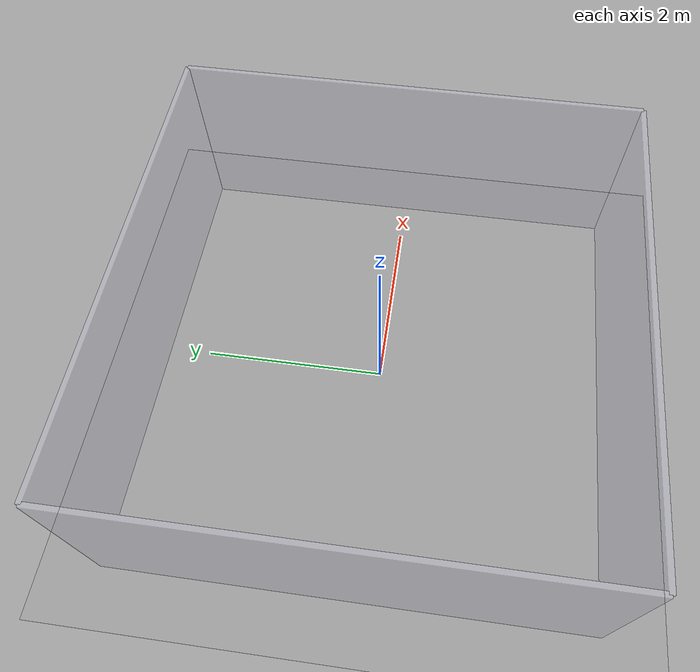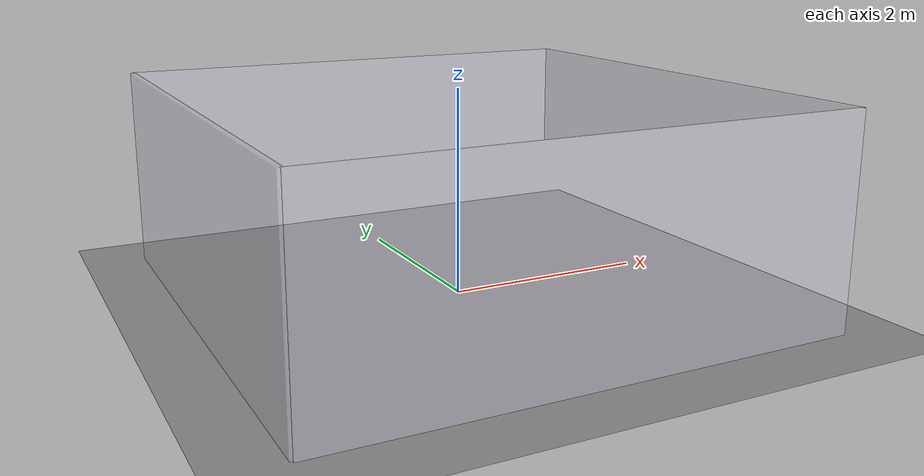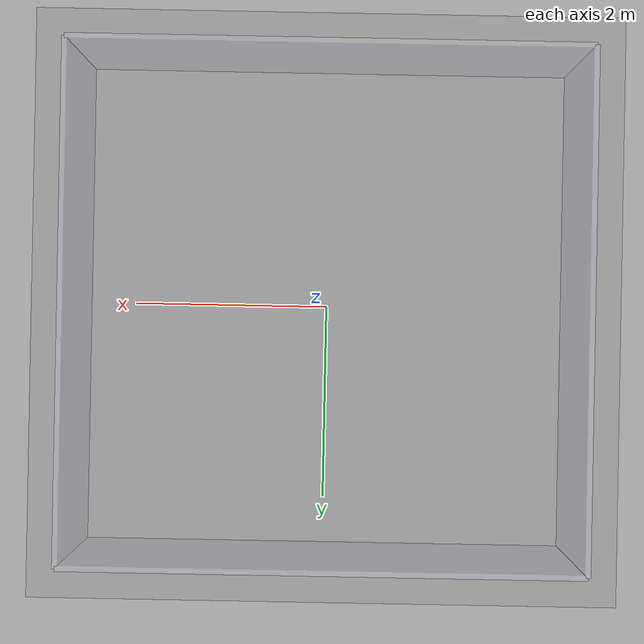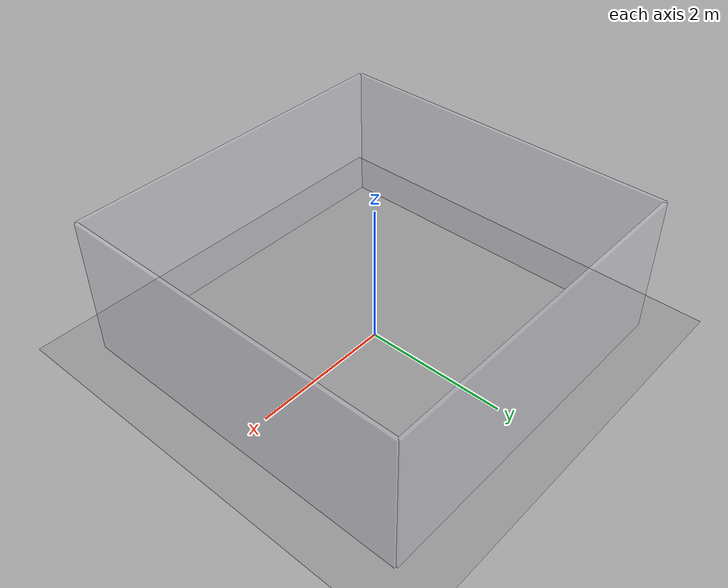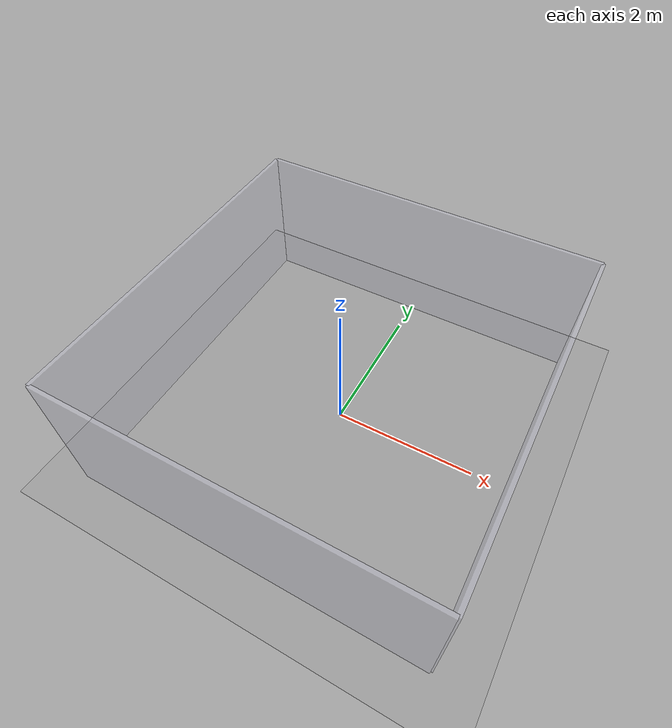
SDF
<sdf version="1.6">
 <world name="crazyflie_trajectory_arena">
  <physics name="arena_physics" type="ode">
   <max_step_size>0.001</max_step_size>
   <real_time_factor>1.0</real_time_factor>
   <real_time_update_rate>1000</real_time_update_rate>
   <ode>
    <solver><type>quick</type><iters>100</iters><sor>1.3</sor></solver>
    <constraints>
     <cfm>0</cfm>
     <erp>0.2</erp>
     <contact_max_correcting_vel>100</contact_max_correcting_vel>
     <contact_surface_layer>0.001</contact_surface_layer>
    </constraints>
   </ode>
  </physics>
  <light name="arena_sunlight" type="directional">
   <pose>0 0 10 0 0 0</pose>
   <diffuse>0.8 0.8 0.8 1</diffuse>
   <specular>0.1 0.1 0.1 1</specular>
   <direction>-0.5 0.1 -0.9</direction>
  </light>
  <light name="arena_ambient" type="directional">
   <cast_shadows>false</cast_shadows>
   <pose>0 0 5 0 0 0</pose>
   <diffuse>0.4 0.4 0.4 1</diffuse>
   <specular>0 0 0 1</specular>
   <direction>0 0 -1</direction>
  </light>
  <model name="arena_ground_plane">
   <static>true</static>
   <link name="ground_link">
    <collision name="ground_collision">
     <geometry><plane><normal>0 0 1</normal><size>10 10</size></plane></geometry>
     <surface><friction><ode><mu>1.0</mu><mu2>1.0</mu2></ode></friction></surface>
    </collision>
    <visual name="ground_visual">
     <geometry><plane><normal>0 0 1</normal><size>10 10</size></plane></geometry>
     <material><ambient>0.6 0.6 0.6 1</ambient><diffuse>0.6 0.6 0.6 1</diffuse></material>
    </visual>
   </link>
  </model>
  <model name="arena_wall_north">
   <static>true</static>
   <pose>0 2.5 1.0 0 0 0</pose>
   <link name="wall_link">
    <collision name="wall_col"><geometry><box><size>5 0.05 2</size></box></geometry></collision>
    <visual name="wall_vis">
     <geometry><box><size>5 0.05 2</size></box></geometry>
     <material><ambient>0.8 0.8 0.9 0.3</ambient><diffuse>0.8 0.8 0.9 0.3</diffuse></material>
    </visual>
   </link>
  </model>
  <model name="arena_wall_south">
   <static>true</static>
   <pose>0 -2.5 1.0 0 0 0</pose>
   <link name="wall_link">
    <collision name="wall_col"><geometry><box><size>5 0.05 2</size></box></geometry></collision>
    <visual name="wall_vis">
     <geometry><box><size>5 0.05 2</size></box></geometry>
     <material><ambient>0.8 0.8 0.9 0.3</ambient><diffuse>0.8 0.8 0.9 0.3</diffuse></material>
    </visual>
   </link>
  </model>
  <model name="arena_wall_east">
   <static>true</static>
   <pose>2.5 0 1.0 0 0 0</pose>
   <link name="wall_link">
    <collision name="wall_col"><geometry><box><size>0.05 5 2</size></box></geometry></collision>
    <visual name="wall_vis">
     <geometry><box><size>0.05 5 2</size></box></geometry>
     <material><ambient>0.8 0.8 0.9 0.3</ambient><diffuse>0.8 0.8 0.9 0.3</diffuse></material>
    </visual>
   </link>
  </model>
  <model name="arena_wall_west">
   <static>true</static>
   <pose>-2.5 0 1.0 0 0 0</pose>
   <link name="wall_link">
    <collision name="wall_col"><geometry><box><size>0.05 5 2</size></box></geometry></collision>
    <visual name="wall_vis">
     <geometry><box><size>0.05 5 2</size></box></geometry>
     <material><ambient>0.8 0.8 0.9 0.3</ambient><diffuse>0.8 0.8 0.9 0.3</diffuse></material>
    </visual>
   </link>
  </model>
  <plugin name="gazebo_ros_state" filename="libgazebo_ros_state.so">
   <ros>
    <remapping>model_states:=gazebo/model_states</remapping>
    <remapping>link_states:=gazebo/link_states</remapping>
   </ros>
   <update_rate>100.0</update_rate>
  </plugin>
  <plugin name="gazebo_ros_factory" filename="libgazebo_ros_factory.so"/>
 </world>
</sdf>
